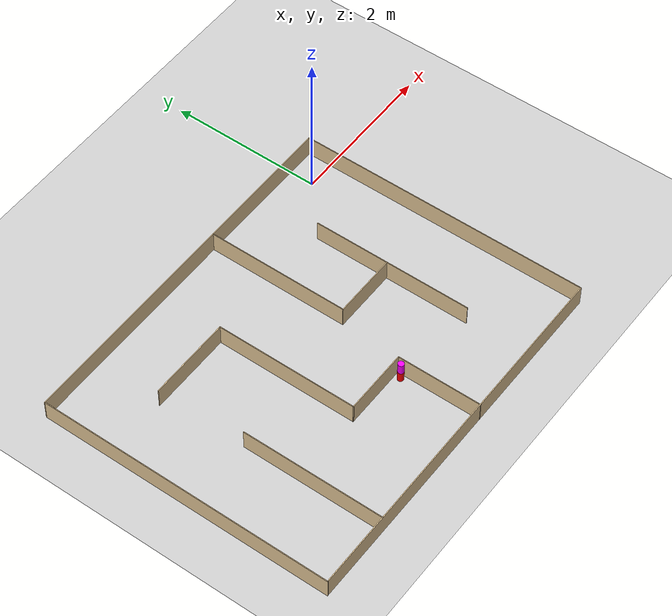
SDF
<sdf version="1.4">
  <world name="default">

    <scene>
      <ambient>0.4 0.4 0.4 1</ambient>
      <background>0.7 0.7 0.7 1</background>
      <shadows>true</shadows>
    </scene>

    <!-- A global light source -->
    <include>
      <uri>model://sun</uri>
    </include>

    <!-- A ground plane -->
    <include>
      <uri>model://ground_plane</uri>
    </include>

    <!-- My Maze -->
    <include>
      <uri>model://maze_3</uri>
	<pose>-2.05 -1.60 0 0 0 0</pose>
    </include>

    <!-- My Beacon -->
    <include>
      <uri>model://beacon_3</uri>
	<pose>-1.72 -2.51 0 0 0 0</pose>
    </include>

    <physics type="ode">
      <real_time_update_rate>1000.0</real_time_update_rate>
      <max_step_size>0.001</max_step_size>
      <real_time_factor>1</real_time_factor>
      <ode>
        <solver>
          <type>quick</type>
          <iters>150</iters>
          <precon_iters>0</precon_iters>
          <sor>1.400000</sor>
          <use_dynamic_moi_rescaling>1</use_dynamic_moi_rescaling>
        </solver>
        <constraints>
          <cfm>0.00001</cfm>
          <erp>0.2</erp>
          <contact_max_correcting_vel>2000.000000</contact_max_correcting_vel>
          <contact_surface_layer>0.01000</contact_surface_layer>
        </constraints>
      </ode>
    </physics>
  </world>

</sdf>

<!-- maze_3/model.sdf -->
<sdf version='1.6'>
  <model name='maze_3'>
    <link name='Wall_10'>
      <pose frame=''>-0.459 0.095453 0 0 0 -1.5708</pose>
      <self_collide>0</self_collide>
      <kinematic>0</kinematic>
      <visual name='Wall_10_Visual'>
        <pose frame=''>0 0 0.14 0 -0 0</pose>
        <geometry>
          <box>
            <size>1.86027 0.01 0.28</size>
          </box>
        </geometry>
        <material>
          <script>
            <uri>file://media/materials/scripts/gazebo.material</uri>
            <name>Gazebo/Grey</name>
          </script>
          <ambient>0.921569 0.807843 0.615686 1</ambient>
          <diffuse>0.7 0.7 0.7 1</diffuse>
          <specular>0.01 0.01 0.01 1</specular>
          <emissive>0 0 0 1</emissive>
        </material>
        <cast_shadows>1</cast_shadows>
        <transparency>0</transparency>
      </visual>
      <collision name='Wall_10_Collision'>
        <laser_retro>0</laser_retro>
        <max_contacts>10</max_contacts>
        <pose frame=''>0 0 0.14 0 -0 0</pose>
        <geometry>
          <box>
            <size>1.86027 0.01 0.28</size>
          </box>
        </geometry>
        <surface>
          <friction>
            <ode>
              <mu>1</mu>
              <mu2>1</mu2>
              <fdir1>0 0 0</fdir1>
              <slip1>0</slip1>
              <slip2>0</slip2>
            </ode>
            <torsional>
              <coefficient>1</coefficient>
              <patch_radius>0</patch_radius>
              <surface_radius>0</surface_radius>
              <use_patch_radius>1</use_patch_radius>
              <ode>
                <slip>0</slip>
              </ode>
            </torsional>
          </friction>
          <bounce>
            <restitution_coefficient>0</restitution_coefficient>
            <threshold>1e+06</threshold>
          </bounce>
          <contact>
            <collide_without_contact>0</collide_without_contact>
            <collide_without_contact_bitmask>1</collide_without_contact_bitmask>
            <collide_bitmask>1</collide_bitmask>
            <ode>
              <soft_cfm>0</soft_cfm>
              <soft_erp>0.2</soft_erp>
              <kp>1e+13</kp>
              <kd>1</kd>
              <max_vel>0.01</max_vel>
              <min_depth>0</min_depth>
            </ode>
            <bullet>
              <split_impulse>1</split_impulse>
              <split_impulse_penetration_threshold>-0.01</split_impulse_penetration_threshold>
              <soft_cfm>0</soft_cfm>
              <soft_erp>0.2</soft_erp>
              <kp>1e+13</kp>
              <kd>1</kd>
            </bullet>
          </contact>
        </surface>
      </collision>
    </link>
    <link name='Wall_11'>
      <pose frame=''>-0.034 -0.829547 0 0 -0 0</pose>
      <self_collide>0</self_collide>
      <kinematic>0</kinematic>
      <visual name='Wall_11_Visual'>
        <pose frame=''>0 0 0.14 0 -0 0</pose>
        <geometry>
          <box>
            <size>0.860223 0.01 0.28</size>
          </box>
        </geometry>
        <material>
          <script>
            <uri>file://media/materials/scripts/gazebo.material</uri>
            <name>Gazebo/Grey</name>
          </script>
          <ambient>0.921569 0.807843 0.615686 1</ambient>
          <diffuse>0.7 0.7 0.7 1</diffuse>
          <specular>0.01 0.01 0.01 1</specular>
          <emissive>0 0 0 1</emissive>
        </material>
        <cast_shadows>1</cast_shadows>
        <transparency>0</transparency>
      </visual>
      <collision name='Wall_11_Collision'>
        <laser_retro>0</laser_retro>
        <max_contacts>10</max_contacts>
        <pose frame=''>0 0 0.14 0 -0 0</pose>
        <geometry>
          <box>
            <size>0.860223 0.01 0.28</size>
          </box>
        </geometry>
        <surface>
          <friction>
            <ode>
              <mu>1</mu>
              <mu2>1</mu2>
              <fdir1>0 0 0</fdir1>
              <slip1>0</slip1>
              <slip2>0</slip2>
            </ode>
            <torsional>
              <coefficient>1</coefficient>
              <patch_radius>0</patch_radius>
              <surface_radius>0</surface_radius>
              <use_patch_radius>1</use_patch_radius>
              <ode>
                <slip>0</slip>
              </ode>
            </torsional>
          </friction>
          <bounce>
            <restitution_coefficient>0</restitution_coefficient>
            <threshold>1e+06</threshold>
          </bounce>
          <contact>
            <collide_without_contact>0</collide_without_contact>
            <collide_without_contact_bitmask>1</collide_without_contact_bitmask>
            <collide_bitmask>1</collide_bitmask>
            <ode>
              <soft_cfm>0</soft_cfm>
              <soft_erp>0.2</soft_erp>
              <kp>1e+13</kp>
              <kd>1</kd>
              <max_vel>0.01</max_vel>
              <min_depth>0</min_depth>
            </ode>
            <bullet>
              <split_impulse>1</split_impulse>
              <split_impulse_penetration_threshold>-0.01</split_impulse_penetration_threshold>
              <soft_cfm>0</soft_cfm>
              <soft_erp>0.2</soft_erp>
              <kp>1e+13</kp>
              <kd>1</kd>
            </bullet>
          </contact>
        </surface>
      </collision>
    </link>
    <link name='Wall_12'>
      <pose frame=''>0.391 -1.37955 0 0 0 -1.5708</pose>
      <self_collide>0</self_collide>
      <kinematic>0</kinematic>
      <visual name='Wall_12_Visual'>
        <pose frame=''>0 0 0.14 0 -0 0</pose>
        <geometry>
          <box>
            <size>1.11027 0.01 0.28</size>
          </box>
        </geometry>
        <material>
          <script>
            <uri>file://media/materials/scripts/gazebo.material</uri>
            <name>Gazebo/Grey</name>
          </script>
          <ambient>0.921569 0.807843 0.615686 1</ambient>
          <diffuse>0.7 0.7 0.7 1</diffuse>
          <specular>0.01 0.01 0.01 1</specular>
          <emissive>0 0 0 1</emissive>
        </material>
        <cast_shadows>1</cast_shadows>
        <transparency>0</transparency>
      </visual>
      <collision name='Wall_12_Collision'>
        <laser_retro>0</laser_retro>
        <max_contacts>10</max_contacts>
        <pose frame=''>0 0 0.14 0 -0 0</pose>
        <geometry>
          <box>
            <size>1.11027 0.01 0.28</size>
          </box>
        </geometry>
        <surface>
          <friction>
            <ode>
              <mu>1</mu>
              <mu2>1</mu2>
              <fdir1>0 0 0</fdir1>
              <slip1>0</slip1>
              <slip2>0</slip2>
            </ode>
            <torsional>
              <coefficient>1</coefficient>
              <patch_radius>0</patch_radius>
              <surface_radius>0</surface_radius>
              <use_patch_radius>1</use_patch_radius>
              <ode>
                <slip>0</slip>
              </ode>
            </torsional>
          </friction>
          <bounce>
            <restitution_coefficient>0</restitution_coefficient>
            <threshold>1e+06</threshold>
          </bounce>
          <contact>
            <collide_without_contact>0</collide_without_contact>
            <collide_without_contact_bitmask>1</collide_without_contact_bitmask>
            <collide_bitmask>1</collide_bitmask>
            <ode>
              <soft_cfm>0</soft_cfm>
              <soft_erp>0.2</soft_erp>
              <kp>1e+13</kp>
              <kd>1</kd>
              <max_vel>0.01</max_vel>
              <min_depth>0</min_depth>
            </ode>
            <bullet>
              <split_impulse>1</split_impulse>
              <split_impulse_penetration_threshold>-0.01</split_impulse_penetration_threshold>
              <soft_cfm>0</soft_cfm>
              <soft_erp>0.2</soft_erp>
              <kp>1e+13</kp>
              <kd>1</kd>
            </bullet>
          </contact>
        </surface>
      </collision>
    </link>
    <link name='Wall_14'>
      <pose frame=''>-1.009 1.02045 0 0 -0 3.14159</pose>
      <self_collide>0</self_collide>
      <kinematic>0</kinematic>
      <visual name='Wall_14_Visual'>
        <pose frame=''>0 0 0.14 0 -0 0</pose>
        <geometry>
          <box>
            <size>1.10978 0.01 0.28</size>
          </box>
        </geometry>
        <material>
          <script>
            <uri>file://media/materials/scripts/gazebo.material</uri>
            <name>Gazebo/Grey</name>
          </script>
          <ambient>0.921569 0.807843 0.615686 1</ambient>
          <diffuse>0.7 0.7 0.7 1</diffuse>
          <specular>0.01 0.01 0.01 1</specular>
          <emissive>0 0 0 1</emissive>
        </material>
        <cast_shadows>1</cast_shadows>
        <transparency>0</transparency>
      </visual>
      <collision name='Wall_14_Collision'>
        <laser_retro>0</laser_retro>
        <max_contacts>10</max_contacts>
        <pose frame=''>0 0 0.14 0 -0 0</pose>
        <geometry>
          <box>
            <size>1.10978 0.01 0.28</size>
          </box>
        </geometry>
        <surface>
          <friction>
            <ode>
              <mu>1</mu>
              <mu2>1</mu2>
              <fdir1>0 0 0</fdir1>
              <slip1>0</slip1>
              <slip2>0</slip2>
            </ode>
            <torsional>
              <coefficient>1</coefficient>
              <patch_radius>0</patch_radius>
              <surface_radius>0</surface_radius>
              <use_patch_radius>1</use_patch_radius>
              <ode>
                <slip>0</slip>
              </ode>
            </torsional>
          </friction>
          <bounce>
            <restitution_coefficient>0</restitution_coefficient>
            <threshold>1e+06</threshold>
          </bounce>
          <contact>
            <collide_without_contact>0</collide_without_contact>
            <collide_without_contact_bitmask>1</collide_without_contact_bitmask>
            <collide_bitmask>1</collide_bitmask>
            <ode>
              <soft_cfm>0</soft_cfm>
              <soft_erp>0.2</soft_erp>
              <kp>1e+13</kp>
              <kd>1</kd>
              <max_vel>0.01</max_vel>
              <min_depth>0</min_depth>
            </ode>
            <bullet>
              <split_impulse>1</split_impulse>
              <split_impulse_penetration_threshold>-0.01</split_impulse_penetration_threshold>
              <soft_cfm>0</soft_cfm>
              <soft_erp>0.2</soft_erp>
              <kp>1e+13</kp>
              <kd>1</kd>
            </bullet>
          </contact>
        </surface>
      </collision>
    </link>
    <link name='Wall_2'>
      <pose frame=''>0 -1.92855 0 0 -0 0</pose>
      <self_collide>0</self_collide>
      <kinematic>0</kinematic>
      <visual name='Wall_2_Visual'>
        <pose frame=''>0 0 0.14 0 -0 0</pose>
        <geometry>
          <box>
            <size>4.86 0.01 0.28</size>
          </box>
        </geometry>
        <material>
          <script>
            <uri>file://media/materials/scripts/gazebo.material</uri>
            <name>Gazebo/Grey</name>
          </script>
          <ambient>0.921569 0.807843 0.615686 1</ambient>
          <diffuse>0.7 0.7 0.7 1</diffuse>
          <specular>0.01 0.01 0.01 1</specular>
          <emissive>0 0 0 1</emissive>
        </material>
        <cast_shadows>1</cast_shadows>
        <transparency>0</transparency>
      </visual>
      <collision name='Wall_2_Collision'>
        <laser_retro>0</laser_retro>
        <max_contacts>10</max_contacts>
        <pose frame=''>0 0 0.14 0 -0 0</pose>
        <geometry>
          <box>
            <size>4.86 0.01 0.28</size>
          </box>
        </geometry>
        <surface>
          <friction>
            <ode>
              <mu>1</mu>
              <mu2>1</mu2>
              <fdir1>0 0 0</fdir1>
              <slip1>0</slip1>
              <slip2>0</slip2>
            </ode>
            <torsional>
              <coefficient>1</coefficient>
              <patch_radius>0</patch_radius>
              <surface_radius>0</surface_radius>
              <use_patch_radius>1</use_patch_radius>
              <ode>
                <slip>0</slip>
              </ode>
            </torsional>
          </friction>
          <bounce>
            <restitution_coefficient>0</restitution_coefficient>
            <threshold>1e+06</threshold>
          </bounce>
          <contact>
            <collide_without_contact>0</collide_without_contact>
            <collide_without_contact_bitmask>1</collide_without_contact_bitmask>
            <collide_bitmask>1</collide_bitmask>
            <ode>
              <soft_cfm>0</soft_cfm>
              <soft_erp>0.2</soft_erp>
              <kp>1e+13</kp>
              <kd>1</kd>
              <max_vel>0.01</max_vel>
              <min_depth>0</min_depth>
            </ode>
            <bullet>
              <split_impulse>1</split_impulse>
              <split_impulse_penetration_threshold>-0.01</split_impulse_penetration_threshold>
              <soft_cfm>0</soft_cfm>
              <soft_erp>0.2</soft_erp>
              <kp>1e+13</kp>
              <kd>1</kd>
            </bullet>
          </contact>
        </surface>
      </collision>
    </link>
    <link name='Wall_20'>
      <pose frame=''>1.41726 -0.00158 0 0 0 -1.5708</pose>
      <self_collide>0</self_collide>
      <kinematic>0</kinematic>
      <visual name='Wall_20_Visual'>
        <pose frame=''>0 0 0.14 0 -0 0</pose>
        <geometry>
          <box>
            <size>2.11 0.01 0.28</size>
          </box>
        </geometry>
        <material>
          <script>
            <uri>file://media/materials/scripts/gazebo.material</uri>
            <name>Gazebo/Grey</name>
          </script>
          <ambient>0.921569 0.807843 0.615686 1</ambient>
          <diffuse>0.7 0.7 0.7 1</diffuse>
          <specular>0.01 0.01 0.01 1</specular>
          <emissive>0 0 0 1</emissive>
        </material>
        <cast_shadows>1</cast_shadows>
        <transparency>0</transparency>
      </visual>
      <collision name='Wall_20_Collision'>
        <laser_retro>0</laser_retro>
        <max_contacts>10</max_contacts>
        <pose frame=''>0 0 0.14 0 -0 0</pose>
        <geometry>
          <box>
            <size>2.11 0.01 0.28</size>
          </box>
        </geometry>
        <surface>
          <friction>
            <ode>
              <mu>1</mu>
              <mu2>1</mu2>
              <fdir1>0 0 0</fdir1>
              <slip1>0</slip1>
              <slip2>0</slip2>
            </ode>
            <torsional>
              <coefficient>1</coefficient>
              <patch_radius>0</patch_radius>
              <surface_radius>0</surface_radius>
              <use_patch_radius>1</use_patch_radius>
              <ode>
                <slip>0</slip>
              </ode>
            </torsional>
          </friction>
          <bounce>
            <restitution_coefficient>0</restitution_coefficient>
            <threshold>1e+06</threshold>
          </bounce>
          <contact>
            <collide_without_contact>0</collide_without_contact>
            <collide_without_contact_bitmask>1</collide_without_contact_bitmask>
            <collide_bitmask>1</collide_bitmask>
            <ode>
              <soft_cfm>0</soft_cfm>
              <soft_erp>0.2</soft_erp>
              <kp>1e+13</kp>
              <kd>1</kd>
              <max_vel>0.01</max_vel>
              <min_depth>0</min_depth>
            </ode>
            <bullet>
              <split_impulse>1</split_impulse>
              <split_impulse_penetration_threshold>-0.01</split_impulse_penetration_threshold>
              <soft_cfm>0</soft_cfm>
              <soft_erp>0.2</soft_erp>
              <kp>1e+13</kp>
              <kd>1</kd>
            </bullet>
          </contact>
        </surface>
      </collision>
    </link>
    <link name='Wall_26'>
      <pose frame=''>0.99 0.060386 0 0 -0 3.14159</pose>
      <self_collide>0</self_collide>
      <kinematic>0</kinematic>
      <visual name='Wall_26_Visual'>
        <pose frame=''>0 0 0.14 0 -0 0</pose>
        <geometry>
          <box>
            <size>0.86 0.01 0.28</size>
          </box>
        </geometry>
        <material>
          <script>
            <uri>file://media/materials/scripts/gazebo.material</uri>
            <name>Gazebo/Grey</name>
          </script>
          <ambient>0.921569 0.807843 0.615686 1</ambient>
          <diffuse>0.7 0.7 0.7 1</diffuse>
          <specular>0.01 0.01 0.01 1</specular>
          <emissive>0 0 0 1</emissive>
        </material>
        <cast_shadows>1</cast_shadows>
        <transparency>0</transparency>
      </visual>
      <collision name='Wall_26_Collision'>
        <laser_retro>0</laser_retro>
        <max_contacts>10</max_contacts>
        <pose frame=''>0 0 0.14 0 -0 0</pose>
        <geometry>
          <box>
            <size>0.86 0.01 0.28</size>
          </box>
        </geometry>
        <surface>
          <friction>
            <ode>
              <mu>1</mu>
              <mu2>1</mu2>
              <fdir1>0 0 0</fdir1>
              <slip1>0</slip1>
              <slip2>0</slip2>
            </ode>
            <torsional>
              <coefficient>1</coefficient>
              <patch_radius>0</patch_radius>
              <surface_radius>0</surface_radius>
              <use_patch_radius>1</use_patch_radius>
              <ode>
                <slip>0</slip>
              </ode>
            </torsional>
          </friction>
          <bounce>
            <restitution_coefficient>0</restitution_coefficient>
            <threshold>1e+06</threshold>
          </bounce>
          <contact>
            <collide_without_contact>0</collide_without_contact>
            <collide_without_contact_bitmask>1</collide_without_contact_bitmask>
            <collide_bitmask>1</collide_bitmask>
            <ode>
              <soft_cfm>0</soft_cfm>
              <soft_erp>0.2</soft_erp>
              <kp>1e+13</kp>
              <kd>1</kd>
              <max_vel>0.01</max_vel>
              <min_depth>0</min_depth>
            </ode>
            <bullet>
              <split_impulse>1</split_impulse>
              <split_impulse_penetration_threshold>-0.01</split_impulse_penetration_threshold>
              <soft_cfm>0</soft_cfm>
              <soft_erp>0.2</soft_erp>
              <kp>1e+13</kp>
              <kd>1</kd>
            </bullet>
          </contact>
        </surface>
      </collision>
    </link>
    <link name='Wall_27'>
      <pose frame=''>0.565 0.989946 0 0 -0 1.5708</pose>
      <self_collide>0</self_collide>
      <kinematic>0</kinematic>
      <visual name='Wall_27_Visual'>
        <pose frame=''>0 0 0.14 0 -0 0</pose>
        <geometry>
          <box>
            <size>1.86046 0.01 0.28</size>
          </box>
        </geometry>
        <material>
          <script>
            <uri>file://media/materials/scripts/gazebo.material</uri>
            <name>Gazebo/Grey</name>
          </script>
          <ambient>0.921569 0.807843 0.615686 1</ambient>
          <diffuse>0.7 0.7 0.7 1</diffuse>
          <specular>0.01 0.01 0.01 1</specular>
          <emissive>0 0 0 1</emissive>
        </material>
        <cast_shadows>1</cast_shadows>
        <transparency>0</transparency>
      </visual>
      <collision name='Wall_27_Collision'>
        <laser_retro>0</laser_retro>
        <max_contacts>10</max_contacts>
        <pose frame=''>0 0 0.14 0 -0 0</pose>
        <geometry>
          <box>
            <size>1.86046 0.01 0.28</size>
          </box>
        </geometry>
        <surface>
          <friction>
            <ode>
              <mu>1</mu>
              <mu2>1</mu2>
              <fdir1>0 0 0</fdir1>
              <slip1>0</slip1>
              <slip2>0</slip2>
            </ode>
            <torsional>
              <coefficient>1</coefficient>
              <patch_radius>0</patch_radius>
              <surface_radius>0</surface_radius>
              <use_patch_radius>1</use_patch_radius>
              <ode>
                <slip>0</slip>
              </ode>
            </torsional>
          </friction>
          <bounce>
            <restitution_coefficient>0</restitution_coefficient>
            <threshold>1e+06</threshold>
          </bounce>
          <contact>
            <collide_without_contact>0</collide_without_contact>
            <collide_without_contact_bitmask>1</collide_without_contact_bitmask>
            <collide_bitmask>1</collide_bitmask>
            <ode>
              <soft_cfm>0</soft_cfm>
              <soft_erp>0.2</soft_erp>
              <kp>1e+13</kp>
              <kd>1</kd>
              <max_vel>0.01</max_vel>
              <min_depth>0</min_depth>
            </ode>
            <bullet>
              <split_impulse>1</split_impulse>
              <split_impulse_penetration_threshold>-0.01</split_impulse_penetration_threshold>
              <soft_cfm>0</soft_cfm>
              <soft_erp>0.2</soft_erp>
              <kp>1e+13</kp>
              <kd>1</kd>
            </bullet>
          </contact>
        </surface>
      </collision>
    </link>
    <link name='Wall_3'>
      <pose frame=''>2.425 -0.003547 0 0 -0 1.5708</pose>
      <self_collide>0</self_collide>
      <kinematic>0</kinematic>
      <visual name='Wall_3_Visual'>
        <pose frame=''>0 0 0.14 0 -0 0</pose>
        <geometry>
          <box>
            <size>3.86 0.01 0.28</size>
          </box>
        </geometry>
        <material>
          <script>
            <uri>file://media/materials/scripts/gazebo.material</uri>
            <name>Gazebo/Grey</name>
          </script>
          <ambient>0.921569 0.807843 0.615686 1</ambient>
          <diffuse>0.7 0.7 0.7 1</diffuse>
          <specular>0.01 0.01 0.01 1</specular>
          <emissive>0 0 0 1</emissive>
        </material>
        <cast_shadows>1</cast_shadows>
        <transparency>0</transparency>
      </visual>
      <collision name='Wall_3_Collision'>
        <laser_retro>0</laser_retro>
        <max_contacts>10</max_contacts>
        <pose frame=''>0 0 0.14 0 -0 0</pose>
        <geometry>
          <box>
            <size>3.86 0.01 0.28</size>
          </box>
        </geometry>
        <surface>
          <friction>
            <ode>
              <mu>1</mu>
              <mu2>1</mu2>
              <fdir1>0 0 0</fdir1>
              <slip1>0</slip1>
              <slip2>0</slip2>
            </ode>
            <torsional>
              <coefficient>1</coefficient>
              <patch_radius>0</patch_radius>
              <surface_radius>0</surface_radius>
              <use_patch_radius>1</use_patch_radius>
              <ode>
                <slip>0</slip>
              </ode>
            </torsional>
          </friction>
          <bounce>
            <restitution_coefficient>0</restitution_coefficient>
            <threshold>1e+06</threshold>
          </bounce>
          <contact>
            <collide_without_contact>0</collide_without_contact>
            <collide_without_contact_bitmask>1</collide_without_contact_bitmask>
            <collide_bitmask>1</collide_bitmask>
            <ode>
              <soft_cfm>0</soft_cfm>
              <soft_erp>0.2</soft_erp>
              <kp>1e+13</kp>
              <kd>1</kd>
              <max_vel>0.01</max_vel>
              <min_depth>0</min_depth>
            </ode>
            <bullet>
              <split_impulse>1</split_impulse>
              <split_impulse_penetration_threshold>-0.01</split_impulse_penetration_threshold>
              <soft_cfm>0</soft_cfm>
              <soft_erp>0.2</soft_erp>
              <kp>1e+13</kp>
              <kd>1</kd>
            </bullet>
          </contact>
        </surface>
      </collision>
    </link>
    <link name='Wall_4'>
      <pose frame=''>0 1.92145 0 0 -0 3.14159</pose>
      <self_collide>0</self_collide>
      <kinematic>0</kinematic>
      <visual name='Wall_4_Visual'>
        <pose frame=''>0 0 0.14 0 -0 0</pose>
        <geometry>
          <box>
            <size>4.86 0.01 0.28</size>
          </box>
        </geometry>
        <material>
          <script>
            <uri>file://media/materials/scripts/gazebo.material</uri>
            <name>Gazebo/Grey</name>
          </script>
          <ambient>0.921569 0.807843 0.615686 1</ambient>
          <diffuse>0.7 0.7 0.7 1</diffuse>
          <specular>0.01 0.01 0.01 1</specular>
          <emissive>0 0 0 1</emissive>
        </material>
        <cast_shadows>1</cast_shadows>
        <transparency>0</transparency>
      </visual>
      <collision name='Wall_4_Collision'>
        <laser_retro>0</laser_retro>
        <max_contacts>10</max_contacts>
        <pose frame=''>0 0 0.14 0 -0 0</pose>
        <geometry>
          <box>
            <size>4.86 0.01 0.28</size>
          </box>
        </geometry>
        <surface>
          <friction>
            <ode>
              <mu>1</mu>
              <mu2>1</mu2>
              <fdir1>0 0 0</fdir1>
              <slip1>0</slip1>
              <slip2>0</slip2>
            </ode>
            <torsional>
              <coefficient>1</coefficient>
              <patch_radius>0</patch_radius>
              <surface_radius>0</surface_radius>
              <use_patch_radius>1</use_patch_radius>
              <ode>
                <slip>0</slip>
              </ode>
            </torsional>
          </friction>
          <bounce>
            <restitution_coefficient>0</restitution_coefficient>
            <threshold>1e+06</threshold>
          </bounce>
          <contact>
            <collide_without_contact>0</collide_without_contact>
            <collide_without_contact_bitmask>1</collide_without_contact_bitmask>
            <collide_bitmask>1</collide_bitmask>
            <ode>
              <soft_cfm>0</soft_cfm>
              <soft_erp>0.2</soft_erp>
              <kp>1e+13</kp>
              <kd>1</kd>
              <max_vel>0.01</max_vel>
              <min_depth>0</min_depth>
            </ode>
            <bullet>
              <split_impulse>1</split_impulse>
              <split_impulse_penetration_threshold>-0.01</split_impulse_penetration_threshold>
              <soft_cfm>0</soft_cfm>
              <soft_erp>0.2</soft_erp>
              <kp>1e+13</kp>
              <kd>1</kd>
            </bullet>
          </contact>
        </surface>
      </collision>
    </link>
    <link name='Wall_5'>
      <pose frame=''>-2.425 -0.003547 0 0 0 -1.5708</pose>
      <self_collide>0</self_collide>
      <kinematic>0</kinematic>
      <visual name='Wall_5_Visual'>
        <pose frame=''>0 0 0.14 0 -0 0</pose>
        <geometry>
          <box>
            <size>3.86023 0.01 0.28</size>
          </box>
        </geometry>
        <material>
          <script>
            <uri>file://media/materials/scripts/gazebo.material</uri>
            <name>Gazebo/Grey</name>
          </script>
          <ambient>0.921569 0.807843 0.615686 1</ambient>
          <diffuse>0.7 0.7 0.7 1</diffuse>
          <specular>0.01 0.01 0.01 1</specular>
          <emissive>0 0 0 1</emissive>
        </material>
        <cast_shadows>1</cast_shadows>
        <transparency>0</transparency>
      </visual>
      <collision name='Wall_5_Collision'>
        <laser_retro>0</laser_retro>
        <max_contacts>10</max_contacts>
        <pose frame=''>0 0 0.14 0 -0 0</pose>
        <geometry>
          <box>
            <size>3.86023 0.01 0.28</size>
          </box>
        </geometry>
        <surface>
          <friction>
            <ode>
              <mu>1</mu>
              <mu2>1</mu2>
              <fdir1>0 0 0</fdir1>
              <slip1>0</slip1>
              <slip2>0</slip2>
            </ode>
            <torsional>
              <coefficient>1</coefficient>
              <patch_radius>0</patch_radius>
              <surface_radius>0</surface_radius>
              <use_patch_radius>1</use_patch_radius>
              <ode>
                <slip>0</slip>
              </ode>
            </torsional>
          </friction>
          <bounce>
            <restitution_coefficient>0</restitution_coefficient>
            <threshold>1e+06</threshold>
          </bounce>
          <contact>
            <collide_without_contact>0</collide_without_contact>
            <collide_without_contact_bitmask>1</collide_without_contact_bitmask>
            <collide_bitmask>1</collide_bitmask>
            <ode>
              <soft_cfm>0</soft_cfm>
              <soft_erp>0.2</soft_erp>
              <kp>1e+13</kp>
              <kd>1</kd>
              <max_vel>0.01</max_vel>
              <min_depth>0</min_depth>
            </ode>
            <bullet>
              <split_impulse>1</split_impulse>
              <split_impulse_penetration_threshold>-0.01</split_impulse_penetration_threshold>
              <soft_cfm>0</soft_cfm>
              <soft_erp>0.2</soft_erp>
              <kp>1e+13</kp>
              <kd>1</kd>
            </bullet>
          </contact>
        </surface>
      </collision>
    </link>
    <link name='Wall_7'>
      <pose frame=''>-1.442 -0.997907 0 0 0 -1.5708</pose>
      <self_collide>0</self_collide>
      <kinematic>0</kinematic>
      <visual name='Wall_7_Visual'>
        <pose frame=''>0 0 0.14 0 -0 0</pose>
        <geometry>
          <box>
            <size>1.85957 0.01 0.28</size>
          </box>
        </geometry>
        <material>
          <script>
            <uri>file://media/materials/scripts/gazebo.material</uri>
            <name>Gazebo/Grey</name>
          </script>
          <ambient>0.921569 0.807843 0.615686 1</ambient>
          <diffuse>0.7 0.7 0.7 1</diffuse>
          <specular>0.01 0.01 0.01 1</specular>
          <emissive>0 0 0 1</emissive>
        </material>
        <cast_shadows>1</cast_shadows>
        <transparency>0</transparency>
      </visual>
      <collision name='Wall_7_Collision'>
        <laser_retro>0</laser_retro>
        <max_contacts>10</max_contacts>
        <pose frame=''>0 0 0.14 0 -0 0</pose>
        <geometry>
          <box>
            <size>1.85957 0.01 0.28</size>
          </box>
        </geometry>
        <surface>
          <friction>
            <ode>
              <mu>1</mu>
              <mu2>1</mu2>
              <fdir1>0 0 0</fdir1>
              <slip1>0</slip1>
              <slip2>0</slip2>
            </ode>
            <torsional>
              <coefficient>1</coefficient>
              <patch_radius>0</patch_radius>
              <surface_radius>0</surface_radius>
              <use_patch_radius>1</use_patch_radius>
              <ode>
                <slip>0</slip>
              </ode>
            </torsional>
          </friction>
          <bounce>
            <restitution_coefficient>0</restitution_coefficient>
            <threshold>1e+06</threshold>
          </bounce>
          <contact>
            <collide_without_contact>0</collide_without_contact>
            <collide_without_contact_bitmask>1</collide_without_contact_bitmask>
            <collide_bitmask>1</collide_bitmask>
            <ode>
              <soft_cfm>0</soft_cfm>
              <soft_erp>0.2</soft_erp>
              <kp>1e+13</kp>
              <kd>1</kd>
              <max_vel>0.01</max_vel>
              <min_depth>0</min_depth>
            </ode>
            <bullet>
              <split_impulse>1</split_impulse>
              <split_impulse_penetration_threshold>-0.01</split_impulse_penetration_threshold>
              <soft_cfm>0</soft_cfm>
              <soft_erp>0.2</soft_erp>
              <kp>1e+13</kp>
              <kd>1</kd>
            </bullet>
          </contact>
        </surface>
      </collision>
    </link>
    <static>1</static>
    <allow_auto_disable>1</allow_auto_disable>
  </model>
</sdf>

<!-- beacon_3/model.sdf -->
<sdf version='1.4'>
  <model name="beacon_3">
	<static>true</static>
          <link name='chassis_lower'>
            <pose>0 0 0.07 0 0 0</pose>

            <collision name='collision'>
              <geometry>
                <cylinder>
                  <radius>.04</radius>
		  <length>.140</length>
                </cylinder>
              </geometry>
            </collision>

            <visual name='visual'>
              <geometry>
                <cylinder>
                  <radius>.04</radius>
		  <length>.140</length>
                </cylinder>
              </geometry>
        	<material>
          	  <ambient>1 0 0 1</ambient>
          	  <diffuse>1 0 0 1</diffuse>
          	  <specular>0.1 0.1 0.1 1</specular>
         	  <emissive>0 0 0 0</emissive>
        	</material>
            </visual>
          </link>

          <link name='chassis_upper'>
            <pose>0 0 0.21 0 0 0</pose>

            <collision name='collision'>
              <geometry>
                <cylinder>
                  <radius>.04</radius>
		  <length>.140</length>
                </cylinder>
              </geometry>
            </collision>

            <visual name='visual'>
              <geometry>
                <cylinder>
                  <radius>.04</radius>
		  <length>.140</length>
                </cylinder>
              </geometry>
        	<material>
          	  <ambient>1 0 1 1</ambient>
          	  <diffuse>1 0 1 1</diffuse>
          	  <specular>0.1 0.1 0.1 1</specular>
         	  <emissive>0 0 0 0</emissive>
        	</material>
            </visual>
          </link>

  </model>
</sdf>
